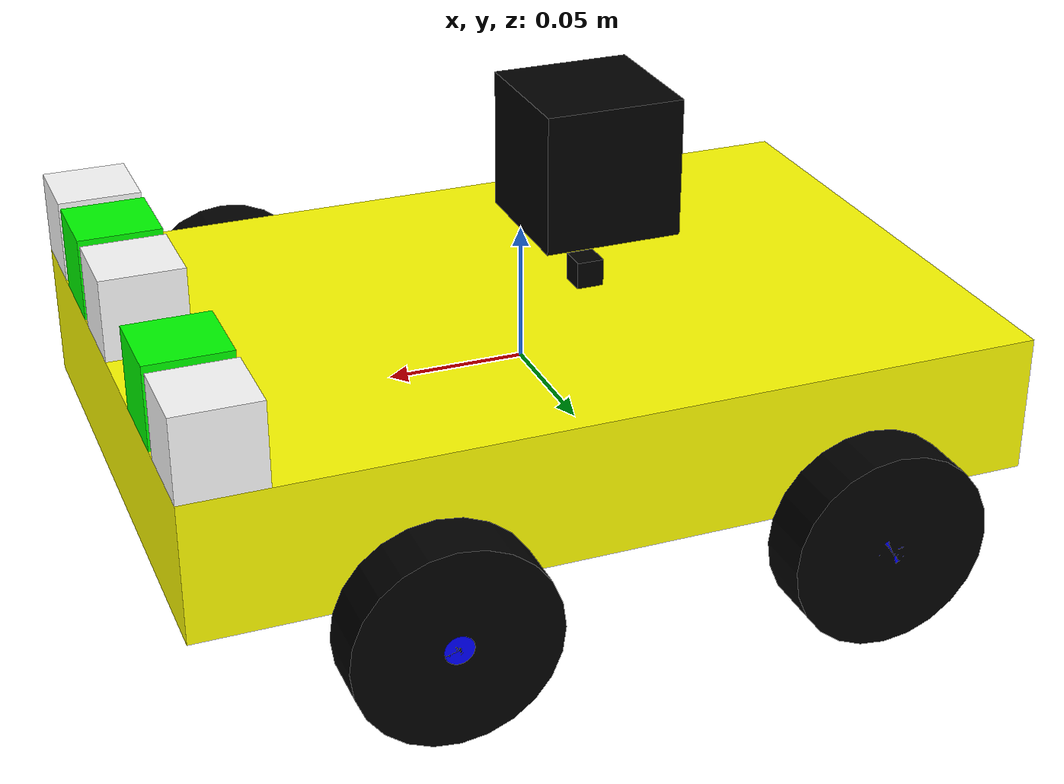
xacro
<robot name="carmen" xmlns:xacro="http://ros.org/wiki/xacro">

  <xacro:include filename="$(find carmen_description)/urdf/materials.urdf.xacro"/>
  <xacro:include filename="$(find carmen_description)/urdf/common.urdf.xacro"/>
  <xacro:include filename="$(find carmen_description)/urdf/sensors/camera.urdf.xacro"/>
  <xacro:include filename="$(find carmen_description)/urdf/sensors/sonar.urdf.xacro"/>
  <xacro:include filename="$(find carmen_description)/urdf/wheels.urdf.xacro"/>

  <xacro:property name="base_width" value="0.3"/>
  <xacro:property name="base_length" value="0.2"/>
  <xacro:property name="base_height" value="0.05"/>
  <xacro:property name="base_mass" value="0.4"/>

  <xacro:property name="wheel_width" value="0.02"/>
  <xacro:property name="wheel_radius" value="0.035"/>
  <xacro:property name="wheel_mass" value="1"/>

  <xacro:property name="imu_size" value="0.01"/>
  <xacro:property name="imu_mass" value="0.01"/>

  <xacro:property name="lidar_size" value="0.05"/>
  <xacro:property name="lidar_mass" value="0.1"/>

  <xacro:property name="bearing_radius" value="0.005"/>

  <link name="base_link">
    <visual>
      <xacro:box_geometry width="${base_width}" length="${base_length}" height="${base_height}"/>
      <xacro:yellow_material/>
    </visual>
    <xacro:box_collision width="${base_width}" length="${base_length}" height="${base_height}"/>
  </link>

  <link name="base_footprint"/>

  <joint name="base_footprint_joint" type="fixed">
    <origin rpy="0 0 0" xyz="0 0 ${- base_height / 2 - wheel_radius + bearing_radius}"/>
    <parent link="base_link"/>
    <child link="base_footprint"/>
  </joint>

  <link name="inertial_link">
    <xacro:box_inertia width="${base_width}" length="${base_length}" height="${base_height}" mass="${base_mass}"/>
  </link>

  <joint name="inertial_joint" type="fixed">
    <origin xyz="0 0 0" rpy="0 0 0" />
    <parent link="base_link" />
    <child link="inertial_link" />
  </joint>

  <link name="imu_link">
    <visual>
      <xacro:cube_geometry size="${imu_size}"/>
      <xacro:black_material/>
    </visual>
    <xacro:cube_collision size="${imu_size}"/>
    <xacro:cube_inertia mass="${imu_mass}" size="${imu_size}"/>
  </link>

  <joint name="imu_joint" type="fixed">
      <origin xyz="-0.025 0 ${(base_height + imu_size) / 2}" rpy="0 0 ${pi / 2}"/>
      <parent link="base_link"/>
      <child link="imu_link"/>
  </joint>

  <link name="lidar_link">
    <visual>
      <xacro:cube_geometry size="${lidar_size}"/>
      <xacro:black_material/>
    </visual>
    <xacro:cube_collision size="${lidar_size}"/>
    <xacro:cube_inertia mass="${lidar_mass}" size="${lidar_size}"/>
  </link>

  <joint name="lidar_joint" type="fixed">
      <origin xyz="-0.025 0 ${(base_height + lidar_size + lidar_size) / 2}" rpy="0 0 ${pi}"/>
      <parent link="base_link"/>
      <child link="lidar_link"/>
  </joint>

  <xacro:simple_camera prefix="left" parent_link_name="base_link" parent_height="${base_height}"
                       parent_length="${base_length / 2}" side="1" x="${base_width / 2}"/>
  <xacro:simple_camera prefix="right" parent_link_name="base_link" parent_height="${base_height}"
                       parent_length="${base_length / 2}" side="-1" x="${base_width / 2}"/>

  <xacro:simple_sonar prefix="left" parent_link_name="base_link" x="${base_width / 2}" y="${base_length / 2}"
                      z="${base_height / 2}"/>
  <xacro:simple_sonar prefix="central" parent_link_name="base_link" x="${base_width / 2}" y="0"
                      z="${base_height / 2}"/>
  <xacro:simple_sonar prefix="right" parent_link_name="base_link" x="${base_width / 2}" y="${-base_length / 2}"
                      y_side="-1" z="${base_height / 2}"/>

  <xacro:wheel prefix="front_left" direction="1" bearing_radius="${bearing_radius}" radius="${wheel_radius}"
               width="${wheel_width}" mass="${wheel_mass}" distance_between_wheels="${base_length}"
               x="${base_width / 4}" z="${bearing_radius - base_height / 2}"/>
  <xacro:wheel prefix="front_right" direction="-1" bearing_radius="${bearing_radius}" radius="${wheel_radius}"
               width="${wheel_width}" mass="${wheel_mass}" distance_between_wheels="${base_length}"
               x="${base_width / 4}" z="${bearing_radius - base_height / 2}"/>
  <xacro:wheel prefix="rear_left" direction="1" bearing_radius="${bearing_radius}" radius="${wheel_radius}"
               width="${wheel_width}" mass="${wheel_mass}" distance_between_wheels="${base_length}"
               x="${-base_width / 4}" z="${bearing_radius - base_height / 2}"/>
  <xacro:wheel prefix="rear_right" direction="-1" bearing_radius="${bearing_radius}" radius="${wheel_radius}"
               width="${wheel_width}" mass="${wheel_mass}" distance_between_wheels="${base_length}"
               x="${-base_width / 4}" z="${bearing_radius - base_height / 2}"/>

</robot>

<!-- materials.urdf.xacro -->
<robot xmlns:xacro="http://ros.org/wiki/xacro">

    <xacro:macro name="white_material">
        <material name="white">
            <color rgba="1.0 1.0 1.0 1.0"/>
        </material>
    </xacro:macro>

    <xacro:macro name="black_material">
        <material name="black">
            <color rgba="0.0 0.0 0.0 1.0"/>
        </material>
    </xacro:macro>

    <xacro:macro name="navajo_white_material">
        <material name="navajo_white">
            <color rgba="1.0 0.87 0.68 1.0"/>
        </material>
    </xacro:macro>

    <xacro:macro name="red_material">
        <material name="red">
            <color rgba="1.0 0.0 0.0 1.0"/>
        </material>
    </xacro:macro>

    <xacro:macro name="green_material">
        <material name="green">
            <color rgba="0.0 1.0 0.0 1.0"/>
        </material>
    </xacro:macro>

    <xacro:macro name="blue_material">
        <material name="blue">
            <color rgba="0.0 0.0 1.0 1.0"/>
        </material>
    </xacro:macro>

    <xacro:macro name="yellow_material">
        <material name="yellow">
            <color rgba="1.0 1.0 0.0 1.0"/>
        </material>
    </xacro:macro>

</robot>

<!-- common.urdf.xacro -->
<robot xmlns:xacro="http://ros.org/wiki/xacro">

    <xacro:macro name="sphere_inertia" params="mass radius">
        <inertial>
            <mass value="${mass}"/>
            <origin xyz="0 0 0"/>

            <inertia ixx="${2*mass*radius*radius/5}" ixy="0.0" ixz="0.0"
                     iyy="${2*mass*radius*radius/5}" iyz="0.0"
                     izz="${2*mass*radius*radius/5}"/>
        </inertial>
    </xacro:macro>

    <xacro:macro name="sphere_inertia_gazebo" params="mass radius">
        <inertial>
            <mass>${mass}</mass>
            <inertia>
                <ixx>${2*mass*radius*radius/5}</ixx>
                <ixy>0</ixy>
                <iyy>${2*mass*radius*radius/5}</iyy>
                <ixz>0</ixz>
                <iyz>0</iyz>
                <izz>${2*mass*radius*radius/5}</izz>
            </inertia>
        </inertial>
    </xacro:macro>

    <xacro:macro name="sphere_geometry" params="radius">
        <geometry>
            <sphere radius="${radius}"/>
        </geometry>
    </xacro:macro>

    <xacro:macro name="sphere_geometry_gazebo" params="radius">
        <geometry>
            <sphere>
                <radius>${radius}</radius>
            </sphere>
        </geometry>
    </xacro:macro>

    <xacro:macro name="sphere_collision" params="radius">
        <collision>
            <xacro:sphere_geometry radius="${radius}"/>
        </collision>
    </xacro:macro>

    <xacro:macro name="cylinder_inertia" params="mass radius height">
        <inertial>
            <mass value="${mass}"/>
            <origin xyz="0 0 0"/>
            <inertia ixx="${(3*radius*radius + height*height)*mass/12}" ixy="0.0" ixz="0.0"
                     iyy="${(3*radius*radius + height*height)*mass/12}" iyz="0.0"
                     izz="${radius*radius*mass/2}"/>
        </inertial>
    </xacro:macro>

    <xacro:macro name="cylinder_geometry" params="radius height">
        <geometry>
            <cylinder length="${height}" radius="${radius}"/>
        </geometry>
    </xacro:macro>

    <xacro:macro name="cylinder_collision" params="radius height">
        <collision>
            <xacro:cylinder_geometry radius="${radius}" height="${height}"/>
        </collision>
    </xacro:macro>

    <xacro:macro name="box_inertia" params="mass width length height x:=0 y:=0 z:=0 roll:=0 pitch:=0 yaw:=0">
        <inertial>
            <origin xyz="${x} ${y} ${z}" rpy="${roll} ${pitch} ${yaw}"/>
            <mass value="${mass}"/>
            <inertia ixx="${(height*height + length*length)*mass/12}" ixy="0.0" ixz="0.0"
                     iyy="${(height*height + width*width  )*mass/12}" iyz="0.0"
                     izz="${(width*width + length*length)*mass/12}"/>
        </inertial>
    </xacro:macro>

    <xacro:macro name="box_geometry" params="width length height">
        <geometry>
            <box size="${width} ${length} ${height}"/>
        </geometry>
    </xacro:macro>

    <xacro:macro name="box_collision" params="width length height">
        <collision>
            <xacro:box_geometry width="${width}" length="${length}" height="${height}"/>
        </collision>
    </xacro:macro>

    <xacro:macro name="cube_geometry" params="size">
        <xacro:box_geometry width="${size}" length="${size}" height="${size}"/>
    </xacro:macro>

    <xacro:macro name="cube_collision" params="size">
        <xacro:box_collision width="${size}" length="${size}" height="${size}"/>
    </xacro:macro>

    <xacro:macro name="cube_inertia" params="mass size x:=0 y:=0 z:=0 roll:=0 pitch:=0 yaw:=0">
        <xacro:box_inertia mass="${mass}" width="${size}" length="${size}" height="${size}" x="${x}" y="${y}" z="${z}"
                           roll="${roll}" pitch="${pitch}" yaw="${yaw}"/>
    </xacro:macro>

</robot>

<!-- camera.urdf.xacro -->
<robot xmlns:xacro="http://ros.org/wiki/xacro">

    <xacro:property name="camera_size" value="0.03"/>
    <xacro:property name="camera_mass" value="0.1"/>

    <xacro:macro name="simple_camera" params="prefix parent_link_name parent_length parent_height side x">
        <link name="${prefix}_camera_link">
            <visual>
              <xacro:cube_geometry size="${camera_size}"/>
              <xacro:green_material/>
            </visual>
            <xacro:cube_collision size="${camera_size}"/>
            <xacro:cube_inertia mass="${camera_mass}" size="${camera_size}"/>
        </link>

        <joint name="${prefix}_camera_joint" type="fixed">
            <origin xyz="${x - camera_size / 2} ${side * parent_length / 2} ${(parent_height + camera_size) / 2}"
                    rpy="0 0 0"/>
            <parent link="${parent_link_name}"/>
            <child link="${prefix}_camera_link"/>
        </joint>
    </xacro:macro>

</robot>

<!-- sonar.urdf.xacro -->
<robot xmlns:xacro="http://ros.org/wiki/xacro">

    <xacro:property name="sonar_size" value="0.03"/>
    <xacro:property name="sonar_mass" value="0.1"/>

    <xacro:macro name="simple_sonar" params="prefix parent_link_name x y z x_side:=1 y_side:=1">
        <link name="${prefix}_sonar_link">
            <visual>
              <xacro:cube_geometry size="${sonar_size}"/>
              <xacro:white_material/>
            </visual>
            <xacro:cube_collision size="${sonar_size}"/>
            <xacro:cube_inertia mass="${sonar_mass}" size="${sonar_size}"/>
        </link>

        <joint name="${prefix}_sonar_joint" type="fixed">
            <origin xyz="${x - x_side * sonar_size / 2} ${y - y_side * sonar_size / 2} ${z + sonar_size / 2}"
                    rpy="0 0 0"/>
            <parent link="${parent_link_name}"/>
            <child link="${prefix}_sonar_link"/>
        </joint>
    </xacro:macro>

</robot>

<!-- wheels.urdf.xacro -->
<robot xmlns:xacro="http://ros.org/wiki/xacro">

  <xacro:macro name="wheel"
         params="prefix direction bearing_radius radius width mass distance_between_wheels x z">
    <link name="${prefix}_bearing">
      <visual>
        <xacro:cylinder_geometry radius="${bearing_radius}" height="${2 * wheel_width}"/>
        <xacro:blue_material/>
      </visual>
      <xacro:cylinder_collision radius="${bearing_radius}" height="${2 * wheel_width}"/>
      <xacro:cylinder_inertia mass="0.01" radius="${bearing_radius}" height="${2 * wheel_width}"/>
    </link>
    <joint name="${prefix}_bearing_base_joint" type="fixed">
      <origin rpy="${-pi / 2} 0 0"
          xyz="${x} ${direction * (distance_between_wheels/2 + wheel_width)} ${z}"/>
      <parent link="base_link"/>
      <child link="${prefix}_bearing"/>
    </joint>
    <link name="${prefix}_wheel">
      <visual>
        <origin rpy="0 0 0 " xyz="0 0 0"/>
          <xacro:cylinder_geometry radius="${radius}" height="${width}"/>
          <xacro:black_material/>
      </visual>
      <xacro:cylinder_collision radius="${radius}" height="${width}"/>
      <xacro:cylinder_inertia mass="${mass}" radius="${radius}" height="${width}"/>
    </link>
    <joint name="${prefix}_wheel_joint" type="continuous">
      <origin rpy="0 0 0" xyz="0 0 ${direction * wheel_width/2}"/>
      <parent link="${prefix}_bearing"/>
      <child link="${prefix}_wheel"/>
      <axis xyz="0 0 1"/>
    </joint>
    <transmission name="${prefix}_wheel_transmission">
      <type>transmission_interface/SimpleTransmission</type>
      <joint name="${prefix}_wheel_joint">
        <hardwareInterface>hardware_interface/VelocityJointInterface</hardwareInterface>
      </joint>
      <actuator name="${prefix}_wheel_motor">
        <hardwareInterface>hardware_interface/VelocityJointInterface</hardwareInterface>
        <mechanicalReduction>1</mechanicalReduction>
        <motorTorqueConstant>1</motorTorqueConstant>
      </actuator>
    </transmission>
  </xacro:macro>

</robot>
